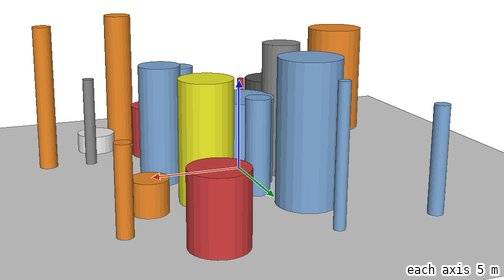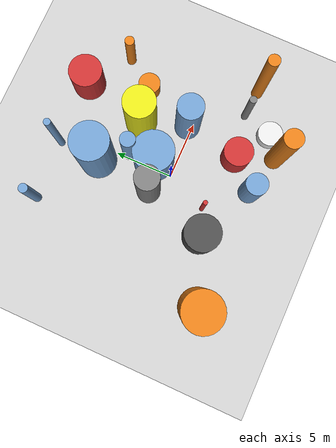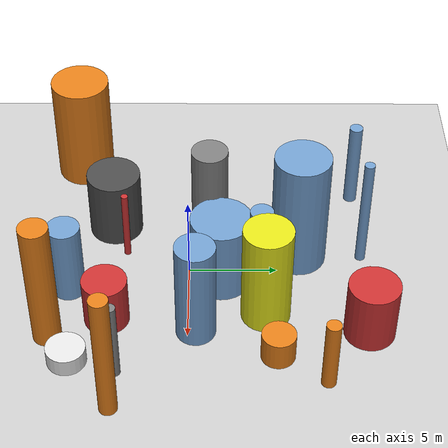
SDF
<?xml version='1.0'?>
<sdf version='1.6'>
  <world name='default'>
    <!-- Sun light -->
    <light name='sun' type='directional'>
      <cast_shadows>1</cast_shadows>
      <pose>0 0 10 0 0 0</pose>
      <diffuse>0.8 0.8 0.8 1</diffuse>
      <specular>0.2 0.2 0.2 1</specular>
      <attenuation>
        <range>1000</range>
        <constant>0.9</constant>
        <linear>0.01</linear>
        <quadratic>0.001</quadratic>
      </attenuation>
      <direction>-0.5 0.1 -0.9</direction>
    </light>

    <!-- Ground plane -->
    <model name='ground_plane'>
      <static>1</static>
      <link name='link'>
        <collision name='collision'>
          <geometry>
            <plane>
              <normal>0 0 1</normal>
              <size>100 100</size>
            </plane>
          </geometry>
          <surface>
            <contact>
              <collide_bitmask>65535</collide_bitmask>
              <ode/>
            </contact>
            <friction>
              <ode>
                <mu>100</mu>
                <mu2>50</mu2>
              </ode>
              <torsional><ode/></torsional>
            </friction>
            <bounce/>
          </surface>
          <max_contacts>10</max_contacts>
        </collision>
        <visual name='visual'>
          <cast_shadows>0</cast_shadows>
          <geometry>
            <plane>
              <normal>0 0 1</normal>
              <size>100 100</size>
            </plane>
          </geometry>
          <material>
            <script>
              <uri>file://media/materials/scripts/gazebo.material</uri>
              <n>Gazebo/Grey</n>
            </script>
          </material>
        </visual>
      </link>
    </model>

    <!-- Environment -->
    <magnetic_field>6e-06 2.3e-05 -4.2e-05</magnetic_field>
    <atmosphere type='adiabatic'/>
    <physics name='default_physics' default='0' type='ode'>
      <gravity>0 0 -9.8</gravity>
      <max_step_size>0.004</max_step_size>
      <real_time_factor>1</real_time_factor>
      <real_time_update_rate>250</real_time_update_rate>
    </physics>
    <scene>
      <ambient>0.4 0.4 0.4 1</ambient>
      <background>0.7 0.7 0.7 1</background>
      <shadows>1</shadows>
    </scene>
    <wind/>
    <spherical_coordinates>
      <surface_model>EARTH_WGS84</surface_model>
      <latitude_deg>0</latitude_deg>
      <longitude_deg>0</longitude_deg>
      <elevation>0</elevation>
      <heading_deg>0</heading_deg>
    </spherical_coordinates>

    <!-- ============ OBSTACLES (20) ============ -->
    <model name='obs_00'>
      <static>1</static>
      <link name='link'>
        <visual name='visual'>
          <geometry>
            <cylinder>
              <radius>1.2474</radius>
              <length>2.9428</length>
            </cylinder>
          </geometry>
          <material>
            <script>
              <n>Gazebo/Red</n>
              <uri>file://media/materials/scripts/gazebo.material</uri>
            </script>
            <ambient>0.8 0.2 0.2 1</ambient>
          </material>
        </visual>
        <collision name='collision'>
          <geometry>
            <cylinder>
              <radius>1.2474</radius>
              <length>2.9428</length>
            </cylinder>
          </geometry>
          <max_contacts>10</max_contacts>
          <surface>
            <contact><ode/></contact>
            <bounce/>
            <friction>
              <ode><mu>1</mu><mu2>1</mu2></ode>
              <torsional><ode/></torsional>
            </friction>
          </surface>
        </collision>
      </link>
      <pose>3.7438 -4.4444 1.4714 0 0 0.1809</pose>
    </model>

    <model name='obs_01'>
      <static>1</static>
      <link name='link'>
        <visual name='visual'>
          <geometry>
            <cylinder>
              <radius>1.5379</radius>
              <length>4.0669</length>
            </cylinder>
          </geometry>
          <material>
            <script>
              <n>Gazebo/DarkGrey</n>
              <uri>file://media/materials/scripts/gazebo.material</uri>
            </script>
            <ambient>0.3 0.3 0.3 1</ambient>
          </material>
        </visual>
        <collision name='collision'>
          <geometry>
            <cylinder>
              <radius>1.5379</radius>
              <length>4.0669</length>
            </cylinder>
          </geometry>
          <max_contacts>10</max_contacts>
          <surface>
            <contact><ode/></contact>
            <bounce/>
            <friction>
              <ode><mu>1</mu><mu2>1</mu2></ode>
              <torsional><ode/></torsional>
            </friction>
          </surface>
        </collision>
      </link>
      <pose>-3.6979 -4.3749 2.0334 0 0 1.3744</pose>
    </model>

    <model name='obs_02'>
      <static>1</static>
      <link name='link'>
        <visual name='visual'>
          <geometry>
            <cylinder>
              <radius>0.3843</radius>
              <length>5.3703</length>
            </cylinder>
          </geometry>
          <material>
            <script>
              <n>Gazebo/Blue</n>
              <uri>file://media/materials/scripts/gazebo.material</uri>
            </script>
            <ambient>0.447 0.624 0.812 1</ambient>
          </material>
        </visual>
        <collision name='collision'>
          <geometry>
            <cylinder>
              <radius>0.3843</radius>
              <length>5.3703</length>
            </cylinder>
          </geometry>
          <max_contacts>10</max_contacts>
          <surface>
            <contact><ode/></contact>
            <bounce/>
            <friction>
              <ode><mu>1</mu><mu2>1</mu2></ode>
              <torsional><ode/></torsional>
            </friction>
          </surface>
        </collision>
      </link>
      <pose>-6.3573 9.6832 2.6852 0 0 2.3022</pose>
    </model>

    <model name='obs_03'>
      <static>1</static>
      <link name='link'>
        <visual name='visual'>
          <geometry>
            <cylinder>
              <radius>0.1924</radius>
              <length>4.3266</length>
            </cylinder>
          </geometry>
          <material>
            <script>
              <n>Gazebo/Red</n>
              <uri>file://media/materials/scripts/gazebo.material</uri>
            </script>
            <ambient>0.8 0.2 0.2 1</ambient>
          </material>
        </visual>
        <collision name='collision'>
          <geometry>
            <cylinder>
              <radius>0.1924</radius>
              <length>4.3266</length>
            </cylinder>
          </geometry>
          <max_contacts>10</max_contacts>
          <surface>
            <contact><ode/></contact>
            <bounce/>
            <friction>
              <ode><mu>1</mu><mu2>1</mu2></ode>
              <torsional><ode/></torsional>
            </friction>
          </surface>
        </collision>
      </link>
      <pose>-1.4660 -3.5944 2.1633 0 0 1.0278</pose>
    </model>

    <model name='obs_04'>
      <static>1</static>
      <link name='link'>
        <visual name='visual'>
          <geometry>
            <cylinder>
              <radius>1.3719</radius>
              <length>6.2077</length>
            </cylinder>
          </geometry>
          <material>
            <script>
              <n>Gazebo/Yellow</n>
              <uri>file://media/materials/scripts/gazebo.material</uri>
            </script>
            <ambient>0.9 0.9 0.1 1</ambient>
          </material>
        </visual>
        <collision name='collision'>
          <geometry>
            <cylinder>
              <radius>1.3719</radius>
              <length>6.2077</length>
            </cylinder>
          </geometry>
          <max_contacts>10</max_contacts>
          <surface>
            <contact><ode/></contact>
            <bounce/>
            <friction>
              <ode><mu>1</mu><mu2>1</mu2></ode>
              <torsional><ode/></torsional>
            </friction>
          </surface>
        </collision>
      </link>
      <pose>3.3654 4.2642 3.1039 0 0 0.2617</pose>
    </model>

    <model name='obs_05'>
      <static>1</static>
      <link name='link'>
        <visual name='visual'>
          <geometry>
            <cylinder>
              <radius>0.2908</radius>
              <length>6.8934</length>
            </cylinder>
          </geometry>
          <material>
            <script>
              <n>Gazebo/Blue</n>
              <uri>file://media/materials/scripts/gazebo.material</uri>
            </script>
            <ambient>0.447 0.624 0.812 1</ambient>
          </material>
        </visual>
        <collision name='collision'>
          <geometry>
            <cylinder>
              <radius>0.2908</radius>
              <length>6.8934</length>
            </cylinder>
          </geometry>
          <max_contacts>10</max_contacts>
          <surface>
            <contact><ode/></contact>
            <bounce/>
            <friction>
              <ode><mu>1</mu><mu2>1</mu2></ode>
              <torsional><ode/></torsional>
            </friction>
          </surface>
        </collision>
      </link>
      <pose>-1.1336 9.8494 3.4467 0 0 2.0498</pose>
    </model>

    <model name='obs_06'>
      <static>1</static>
      <link name='link'>
        <visual name='visual'>
          <geometry>
            <cylinder>
              <radius>0.9199</radius>
              <length>4.6814</length>
            </cylinder>
          </geometry>
          <material>
            <script>
              <n>Gazebo/Blue</n>
              <uri>file://media/materials/scripts/gazebo.material</uri>
            </script>
            <ambient>0.447 0.624 0.812 1</ambient>
          </material>
        </visual>
        <collision name='collision'>
          <geometry>
            <cylinder>
              <radius>0.9199</radius>
              <length>4.6814</length>
            </cylinder>
          </geometry>
          <max_contacts>10</max_contacts>
          <surface>
            <contact><ode/></contact>
            <bounce/>
            <friction>
              <ode><mu>1</mu><mu2>1</mu2></ode>
              <torsional><ode/></torsional>
            </friction>
          </surface>
        </collision>
      </link>
      <pose>1.4821 -6.7108 2.3407 0 0 0.8234</pose>
    </model>

    <model name='obs_07'>
      <static>1</static>
      <link name='link'>
        <visual name='visual'>
          <geometry>
            <cylinder>
              <radius>0.7904</radius>
              <length>7.8930</length>
            </cylinder>
          </geometry>
          <material>
            <script>
              <n>Gazebo/Orange</n>
              <uri>file://media/materials/scripts/gazebo.material</uri>
            </script>
            <ambient>0.9 0.5 0.1 1</ambient>
          </material>
        </visual>
        <collision name='collision'>
          <geometry>
            <cylinder>
              <radius>0.7904</radius>
              <length>7.8930</length>
            </cylinder>
          </geometry>
          <max_contacts>10</max_contacts>
          <surface>
            <contact><ode/></contact>
            <bounce/>
            <friction>
              <ode><mu>1</mu><mu2>1</mu2></ode>
              <torsional><ode/></torsional>
            </friction>
          </surface>
        </collision>
      </link>
      <pose>5.0177 -7.5749 3.9465 0 0 0.4593</pose>
    </model>

    <model name='obs_08'>
      <static>1</static>
      <link name='link'>
        <visual name='visual'>
          <geometry>
            <cylinder>
              <radius>1.4159</radius>
              <length>3.5766</length>
            </cylinder>
          </geometry>
          <material>
            <script>
              <n>Gazebo/Red</n>
              <uri>file://media/materials/scripts/gazebo.material</uri>
            </script>
            <ambient>0.8 0.2 0.2 1</ambient>
          </material>
        </visual>
        <collision name='collision'>
          <geometry>
            <cylinder>
              <radius>1.4159</radius>
              <length>3.5766</length>
            </cylinder>
          </geometry>
          <max_contacts>10</max_contacts>
          <surface>
            <contact><ode/></contact>
            <bounce/>
            <friction>
              <ode><mu>1</mu><mu2>1</mu2></ode>
              <torsional><ode/></torsional>
            </friction>
          </surface>
        </collision>
      </link>
      <pose>4.6732 9.8713 1.7883 0 0 0.6552</pose>
    </model>

    <model name='obs_09'>
      <static>1</static>
      <link name='link'>
        <visual name='visual'>
          <geometry>
            <cylinder>
              <radius>1.5835</radius>
              <length>7.3201</length>
            </cylinder>
          </geometry>
          <material>
            <script>
              <n>Gazebo/Blue</n>
              <uri>file://media/materials/scripts/gazebo.material</uri>
            </script>
            <ambient>0.447 0.624 0.812 1</ambient>
          </material>
        </visual>
        <collision name='collision'>
          <geometry>
            <cylinder>
              <radius>1.5835</radius>
              <length>7.3201</length>
            </cylinder>
          </geometry>
          <max_contacts>10</max_contacts>
          <surface>
            <contact><ode/></contact>
            <bounce/>
            <friction>
              <ode><mu>1</mu><mu2>1</mu2></ode>
              <torsional><ode/></torsional>
            </friction>
          </surface>
        </collision>
      </link>
      <pose>-1.2246 6.2441 3.6601 0 0 2.5172</pose>
    </model>

    <model name='obs_10'>
      <static>1</static>
      <link name='link'>
        <visual name='visual'>
          <geometry>
            <cylinder>
              <radius>0.4979</radius>
              <length>7.9310</length>
            </cylinder>
          </geometry>
          <material>
            <script>
              <n>Gazebo/Orange</n>
              <uri>file://media/materials/scripts/gazebo.material</uri>
            </script>
            <ambient>0.9 0.5 0.1 1</ambient>
          </material>
        </visual>
        <collision name='collision'>
          <geometry>
            <cylinder>
              <radius>0.4979</radius>
              <length>7.9310</length>
            </cylinder>
          </geometry>
          <max_contacts>10</max_contacts>
          <surface>
            <contact><ode/></contact>
            <bounce/>
            <friction>
              <ode><mu>1</mu><mu2>1</mu2></ode>
              <torsional><ode/></torsional>
            </friction>
          </surface>
        </collision>
      </link>
      <pose>9.9813 -3.9427 3.9655 0 0 3.0312</pose>
    </model>

    <model name='obs_11'>
      <static>1</static>
      <link name='link'>
        <visual name='visual'>
          <geometry>
            <cylinder>
              <radius>1.0997</radius>
              <length>6.2470</length>
            </cylinder>
          </geometry>
          <material>
            <script>
              <n>Gazebo/Blue</n>
              <uri>file://media/materials/scripts/gazebo.material</uri>
            </script>
            <ambient>0.447 0.624 0.812 1</ambient>
          </material>
        </visual>
        <collision name='collision'>
          <geometry>
            <cylinder>
              <radius>1.0997</radius>
              <length>6.2470</length>
            </cylinder>
          </geometry>
          <max_contacts>10</max_contacts>
          <surface>
            <contact><ode/></contact>
            <bounce/>
            <friction>
              <ode><mu>1</mu><mu2>1</mu2></ode>
              <torsional><ode/></torsional>
            </friction>
          </surface>
        </collision>
      </link>
      <pose>4.6378 0.4484 3.1235 0 0 1.2502</pose>
    </model>

    <model name='obs_12'>
      <static>1</static>
      <link name='link'>
        <visual name='visual'>
          <geometry>
            <cylinder>
              <radius>1.7330</radius>
              <length>4.5503</length>
            </cylinder>
          </geometry>
          <material>
            <script>
              <n>Gazebo/Blue</n>
              <uri>file://media/materials/scripts/gazebo.material</uri>
            </script>
            <ambient>0.447 0.624 0.812 1</ambient>
          </material>
        </visual>
        <collision name='collision'>
          <geometry>
            <cylinder>
              <radius>1.7330</radius>
              <length>4.5503</length>
            </cylinder>
          </geometry>
          <max_contacts>10</max_contacts>
          <surface>
            <contact><ode/></contact>
            <bounce/>
            <friction>
              <ode><mu>1</mu><mu2>1</mu2></ode>
              <torsional><ode/></torsional>
            </friction>
          </surface>
        </collision>
      </link>
      <pose>0.6103 1.8210 2.2752 0 0 2.8618</pose>
    </model>

    <model name='obs_13'>
      <static>1</static>
      <link name='link'>
        <visual name='visual'>
          <geometry>
            <cylinder>
              <radius>1.0801</radius>
              <length>1.0435</length>
            </cylinder>
          </geometry>
          <material>
            <script>
              <n>Gazebo/White</n>
              <uri>file://media/materials/scripts/gazebo.material</uri>
            </script>
            <ambient>0.9 0.9 0.9 1</ambient>
          </material>
        </visual>
        <collision name='collision'>
          <geometry>
            <cylinder>
              <radius>1.0801</radius>
              <length>1.0435</length>
            </cylinder>
          </geometry>
          <max_contacts>10</max_contacts>
          <surface>
            <contact><ode/></contact>
            <bounce/>
            <friction>
              <ode><mu>1</mu><mu2>1</mu2></ode>
              <torsional><ode/></torsional>
            </friction>
          </surface>
        </collision>
      </link>
      <pose>6.7834 -6.3729 0.5218 0 0 1.6318</pose>
    </model>

    <model name='obs_14'>
      <static>1</static>
      <link name='link'>
        <visual name='visual'>
          <geometry>
            <cylinder>
              <radius>1.6986</radius>
              <length>6.5837</length>
            </cylinder>
          </geometry>
          <material>
            <script>
              <n>Gazebo/Orange</n>
              <uri>file://media/materials/scripts/gazebo.material</uri>
            </script>
            <ambient>0.9 0.5 0.1 1</ambient>
          </material>
        </visual>
        <collision name='collision'>
          <geometry>
            <cylinder>
              <radius>1.6986</radius>
              <length>6.5837</length>
            </cylinder>
          </geometry>
          <max_contacts>10</max_contacts>
          <surface>
            <contact><ode/></contact>
            <bounce/>
            <friction>
              <ode><mu>1</mu><mu2>1</mu2></ode>
              <torsional><ode/></torsional>
            </friction>
          </surface>
        </collision>
      </link>
      <pose>-9.1874 -6.5995 3.2918 0 0 2.4637</pose>
    </model>

    <model name='obs_15'>
      <static>1</static>
      <link name='link'>
        <visual name='visual'>
          <geometry>
            <cylinder>
              <radius>0.4037</radius>
              <length>4.3638</length>
            </cylinder>
          </geometry>
          <material>
            <script>
              <n>Gazebo/Orange</n>
              <uri>file://media/materials/scripts/gazebo.material</uri>
            </script>
            <ambient>0.9 0.5 0.1 1</ambient>
          </material>
        </visual>
        <collision name='collision'>
          <geometry>
            <cylinder>
              <radius>0.4037</radius>
              <length>4.3638</length>
            </cylinder>
          </geometry>
          <max_contacts>10</max_contacts>
          <surface>
            <contact><ode/></contact>
            <bounce/>
            <friction>
              <ode><mu>1</mu><mu2>1</mu2></ode>
              <torsional><ode/></torsional>
            </friction>
          </surface>
        </collision>
      </link>
      <pose>8.2335 7.4256 2.1819 0 0 2.1687</pose>
    </model>

    <model name='obs_16'>
      <static>1</static>
      <link name='link'>
        <visual name='visual'>
          <geometry>
            <cylinder>
              <radius>0.6540</radius>
              <length>4.9916</length>
            </cylinder>
          </geometry>
          <material>
            <script>
              <n>Gazebo/Blue</n>
              <uri>file://media/materials/scripts/gazebo.material</uri>
            </script>
            <ambient>0.447 0.624 0.812 1</ambient>
          </material>
        </visual>
        <collision name='collision'>
          <geometry>
            <cylinder>
              <radius>0.6540</radius>
              <length>4.9916</length>
            </cylinder>
          </geometry>
          <max_contacts>10</max_contacts>
          <surface>
            <contact><ode/></contact>
            <bounce/>
            <friction>
              <ode><mu>1</mu><mu2>1</mu2></ode>
              <torsional><ode/></torsional>
            </friction>
          </surface>
        </collision>
      </link>
      <pose>0.5190 4.0248 2.4958 0 0 1.0327</pose>
    </model>

    <model name='obs_17'>
      <static>1</static>
      <link name='link'>
        <visual name='visual'>
          <geometry>
            <cylinder>
              <radius>0.9410</radius>
              <length>1.6958</length>
            </cylinder>
          </geometry>
          <material>
            <script>
              <n>Gazebo/Orange</n>
              <uri>file://media/materials/scripts/gazebo.material</uri>
            </script>
            <ambient>0.9 0.5 0.1 1</ambient>
          </material>
        </visual>
        <collision name='collision'>
          <geometry>
            <cylinder>
              <radius>0.9410</radius>
              <length>1.6958</length>
            </cylinder>
          </geometry>
          <max_contacts>10</max_contacts>
          <surface>
            <contact><ode/></contact>
            <bounce/>
            <friction>
              <ode><mu>1</mu><mu2>1</mu2></ode>
              <torsional><ode/></torsional>
            </friction>
          </surface>
        </collision>
      </link>
      <pose>6.4157 4.8549 0.8479 0 0 0.0158</pose>
    </model>

    <model name='obs_18'>
      <static>1</static>
      <link name='link'>
        <visual name='visual'>
          <geometry>
            <cylinder>
              <radius>0.3068</radius>
              <length>4.8907</length>
            </cylinder>
          </geometry>
          <material>
            <script>
              <n>Gazebo/Grey</n>
              <uri>file://media/materials/scripts/gazebo.material</uri>
            </script>
            <ambient>0.5 0.5 0.5 1</ambient>
          </material>
        </visual>
        <collision name='collision'>
          <geometry>
            <cylinder>
              <radius>0.3068</radius>
              <length>4.8907</length>
            </cylinder>
          </geometry>
          <max_contacts>10</max_contacts>
          <surface>
            <contact><ode/></contact>
            <bounce/>
            <friction>
              <ode><mu>1</mu><mu2>1</mu2></ode>
              <torsional><ode/></torsional>
            </friction>
          </surface>
        </collision>
      </link>
      <pose>7.5988 -3.7701 2.4453 0 0 2.5027</pose>
    </model>

    <model name='obs_19'>
      <static>1</static>
      <link name='link'>
        <visual name='visual'>
          <geometry>
            <cylinder>
              <radius>1.0206</radius>
              <length>7.1727</length>
            </cylinder>
          </geometry>
          <material>
            <script>
              <n>Gazebo/Grey</n>
              <uri>file://media/materials/scripts/gazebo.material</uri>
            </script>
            <ambient>0.5 0.5 0.5 1</ambient>
          </material>
        </visual>
        <collision name='collision'>
          <geometry>
            <cylinder>
              <radius>1.0206</radius>
              <length>7.1727</length>
            </cylinder>
          </geometry>
          <max_contacts>10</max_contacts>
          <surface>
            <contact><ode/></contact>
            <bounce/>
            <friction>
              <ode><mu>1</mu><mu2>1</mu2></ode>
              <torsional><ode/></torsional>
            </friction>
          </surface>
        </collision>
      </link>
      <pose>-1.9506 1.1730 3.5863 0 0 0.1940</pose>
    </model>

    <!-- GUI camera -->
    <gui fullscreen='0'>
      <camera name='user_camera'>
        <pose>-15 0 18 0 0.85 0.15</pose>
        <view_controller>orbit</view_controller>
        <projection_type>perspective</projection_type>
      </camera>
    </gui>
  </world>
</sdf>
